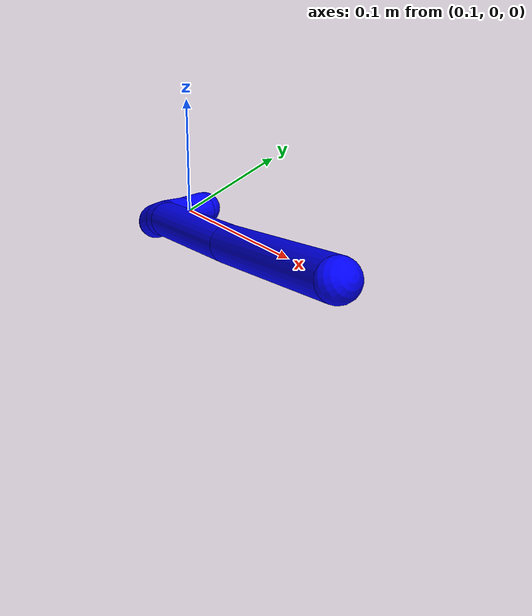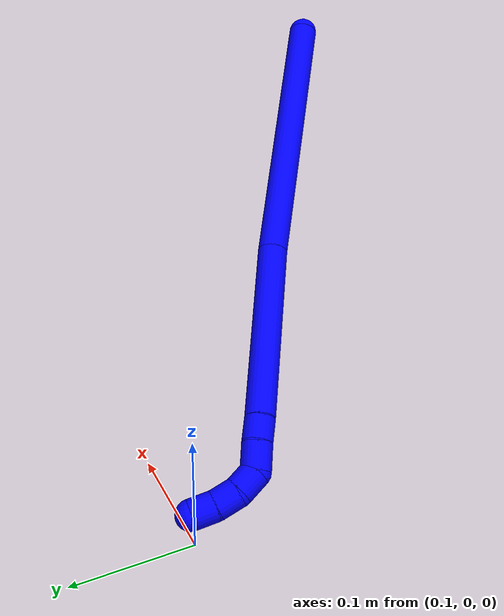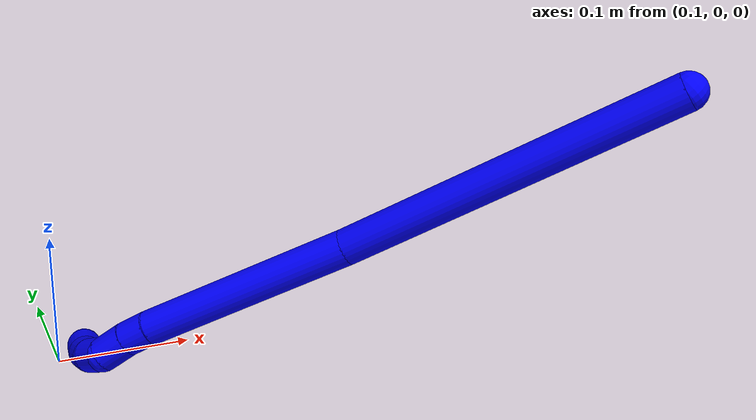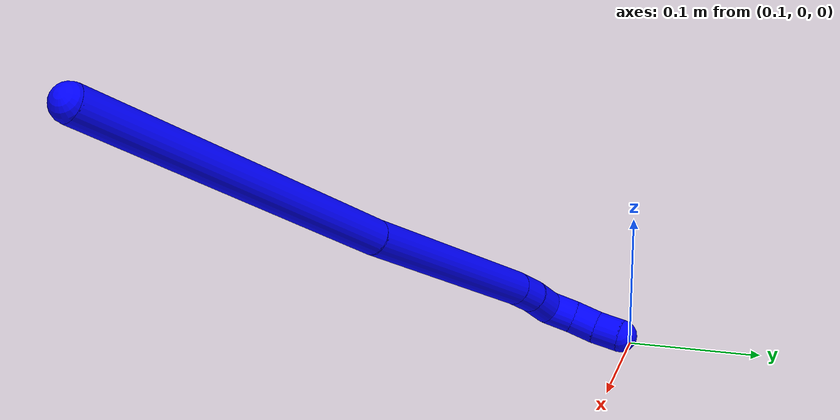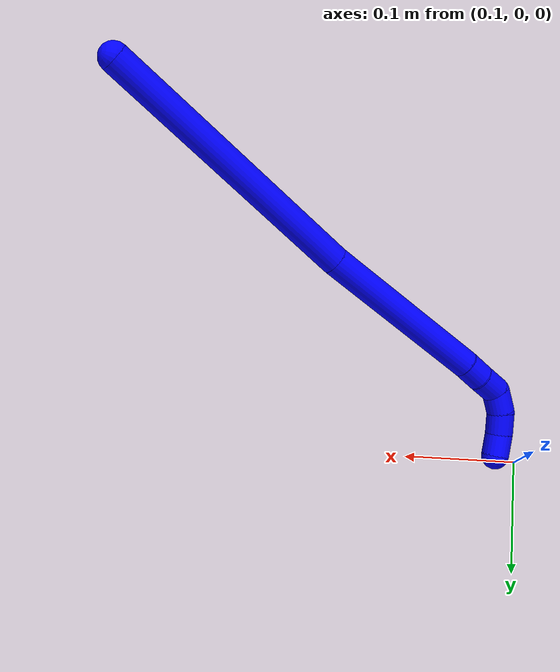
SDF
<sdf version="1.7">
 <world name="default">
  <plugin name="TubeGeneratorPlugin" filename="libtube_generator_plugin.so"/>
  <model name="photoneo_s_sensor">
   <static>1</static>
   <pose>0 0 2 1.57079 1.57079 3.14159</pose>
   <link name="link">
    <inertial><mass>0.1</mass></inertial>
    <sensor name="sensor" type="depth">
     <update_rate>30</update_rate>
     <camera>
      <horizontal_fov>1.22</horizontal_fov>
      <image><width>1920</width><height>1200</height><format>B8G8R8</format></image>
      <clip><near>0.1</near><far>4</far></clip>
      <depth_camera><output>points</output></depth_camera>
     </camera>
     <plugin name="camera_plugin" filename="libgazebo_ros_depth_camera.so">
      <baseline>0.2</baseline>
      <alwaysOn>1</alwaysOn>
      <updateRate>0.0</updateRate>
      <cameraName>camera_ir</cameraName>
      <imageTopicName>/camera/color/image_raw</imageTopicName>
      <cameraInfoTopicName>/camera/color/camera_info</cameraInfoTopicName>
      <depthImageTopicName>/camera/depth/image_raw</depthImageTopicName>
      <depthImageCameraInfoTopicName>/camera/depth/camera_info</depthImageCameraInfoTopicName>
      <pointCloudTopicName>/camera/depth/points</pointCloudTopicName>
      <frameName>fr_optical</frameName>
      <pointCloudCutoff>0.1</pointCloudCutoff>
      <pointCloudCutoffMax>2.0</pointCloudCutoffMax>
      <distortionK1>0</distortionK1>
      <distortionK2>0</distortionK2>
      <distortionK3>0</distortionK3>
      <distortionT1>0</distortionT1>
      <distortionT2>0</distortionT2>
      <CxPrime>0</CxPrime>
      <Cx>0</Cx>
      <Cy>0</Cy>
      <focalLength>0</focalLength>
      <hackBaseline>0</hackBaseline>
     </plugin>
    </sensor>
   </link>
  </model>
  <gravity>0 0 -9.8</gravity>
  <magnetic_field>6e-06 2.3e-05 -4.2e-05</magnetic_field>
  <atmosphere type="adiabatic"/>
  <physics name="default_physics" default="0" type="ode">
   <max_step_size>0.003</max_step_size>
   <real_time_factor>1</real_time_factor>
   <real_time_update_rate>1000</real_time_update_rate>
   <max_contacts>10000</max_contacts>
   <ode>
    <solver>
     <type>quick</type>
     <iters>100</iters>
     <sor>1.3</sor>
     <use_dynamic_moi_rescaling>0</use_dynamic_moi_rescaling>
    </solver>
    <constraints>
     <contact_max_correcting_vel>0</contact_max_correcting_vel>
     <contact_surface_layer>0.001</contact_surface_layer>
     <cfm>0</cfm>
     <erp>0.2</erp>
    </constraints>
   </ode>
  </physics>
  <scene><ambient>0.4 0.4 0.4 1</ambient><background>0.7 0.7 0.7 1</background><shadows>0</shadows></scene>
  <audio><device>default</device></audio>
  <spherical_coordinates>
   <surface_model>EARTH_WGS84</surface_model>
   <latitude_deg>0</latitude_deg>
   <longitude_deg>0</longitude_deg>
   <elevation>0</elevation>
   <heading_deg>0</heading_deg>
  </spherical_coordinates>
  <model name="bin">
   <static>1</static>
   <link name="bottom">
    <collision name="collision-bottom">
     <pose>0 0 -0.01 0 -0 0</pose>
     <geometry><box><size>0.8 0.6 0.02</size></box></geometry>
     <surface>
      <friction><ode><mu>100</mu><mu2>100</mu2></ode></friction>
      <contact><collide_bitmask>65535</collide_bitmask></contact>
     </surface>
    </collision>
   </link>
   <link name="west_wall">
    <collision name="collision-west_wall">
     <pose>-0.41 0 0.1 0 -0 0</pose>
     <geometry><box><size>0.02 0.6 0.2</size></box></geometry>
     <surface>
      <friction><ode><mu>100</mu><mu2>100</mu2></ode></friction>
      <contact><collide_bitmask>65535</collide_bitmask></contact>
     </surface>
    </collision>
   </link>
   <link name="east_wall">
    <collision name="collision-east_wall">
     <pose>0.41 0 0.1 0 -0 0</pose>
     <geometry><box><size>0.02 0.6 0.2</size></box></geometry>
     <surface>
      <friction><ode><mu>100</mu><mu2>100</mu2></ode></friction>
      <contact><collide_bitmask>65535</collide_bitmask></contact>
     </surface>
    </collision>
   </link>
   <link name="south_wall">
    <collision name="collision-south_wall">
     <pose>0 -0.31 0.1 0 -0 0</pose>
     <geometry><box><size>0.8 0.02 0.2</size></box></geometry>
     <surface>
      <friction><ode><mu>100</mu><mu2>100</mu2></ode></friction>
      <contact><collide_bitmask>65535</collide_bitmask></contact>
     </surface>
    </collision>
   </link>
   <link name="north_wall">
    <collision name="collision-north_wall">
     <pose>0 0.31 0.1 0 -0 0</pose>
     <geometry><box><size>0.8 0.02 0.2</size></box></geometry>
     <surface>
      <friction><ode><mu>100</mu><mu2>100</mu2></ode></friction>
      <contact><collide_bitmask>65535</collide_bitmask></contact>
     </surface>
    </collision>
   </link>
  </model>
  <model name="1">
   <static>0</static>
   <link name="1">
    <collision name="collision-cylinder-e_1_1_4">
     <pose>0.045434 0.028968 0.107548 -0.263109 0.387309 -0.051887</pose>
     <geometry><cylinder><radius>0.0125</radius><length>0.240582</length></cylinder></geometry>
     <surface>
      <friction><ode><mu>1.16</mu><mu2>1.16</mu2><slip1>0</slip1><slip2>0</slip2></ode></friction>
      <contact><ode><kp>1e+06</kp><kd>1</kd><max_vel>0</max_vel><min_depth>0.001</min_depth></ode></contact>
     </surface>
    </collision>
    <visual name="visual-cylinder-e_1_1_4">
     <pose>0.045434 0.028968 0.107548 -0.263109 0.387309 -0.051887</pose>
     <geometry><cylinder><radius>0.0125</radius><length>0.240582</length></cylinder></geometry>
     <material><ambient>0 0 1 1</ambient></material>
    </visual>
    <collision name="collision-cylinder-e_2_4_5">
     <pose>0.121443 0.070729 0.285256 -0.18035 0.405022 -0.037127</pose>
     <geometry><cylinder><radius>0.0125</radius><length>0.155191</length></cylinder></geometry>
     <surface>
      <friction><ode><mu>1.16</mu><mu2>1.16</mu2><slip1>0</slip1><slip2>0</slip2></ode></friction>
      <contact><ode><kp>1e+06</kp><kd>1</kd><max_vel>0</max_vel><min_depth>0.001</min_depth></ode></contact>
     </surface>
    </collision>
    <visual name="visual-cylinder-e_2_4_5">
     <pose>0.121443 0.070729 0.285256 -0.18035 0.405022 -0.037127</pose>
     <geometry><cylinder><radius>0.0125</radius><length>0.155191</length></cylinder></geometry>
     <material><ambient>0 0 1 1</ambient></material>
    </visual>
    <collision name="collision-cylinder-e_3_5_6">
     <pose>0.155587 0.085895 0.364477 -0.256168 0.364 -0.047395</pose>
     <geometry><cylinder><radius>0.0125</radius><length>0.020044</length></cylinder></geometry>
     <surface>
      <friction><ode><mu>1.16</mu><mu2>1.16</mu2><slip1>0</slip1><slip2>0</slip2></ode></friction>
      <contact><ode><kp>1e+06</kp><kd>1</kd><max_vel>0</max_vel><min_depth>0.001</min_depth></ode></contact>
     </surface>
    </collision>
    <visual name="visual-cylinder-e_3_5_6">
     <pose>0.155587 0.085895 0.364477 -0.256168 0.364 -0.047395</pose>
     <geometry><cylinder><radius>0.0125</radius><length>0.020044</length></cylinder></geometry>
     <material><ambient>0 0 1 1</ambient></material>
    </visual>
    <collision name="collision-cylinder-e_4_6_7">
     <pose>0.162004 0.091198 0.384462 -0.262056 0.246737 -0.032679</pose>
     <geometry><cylinder><radius>0.0125</radius><length>0.02333</length></cylinder></geometry>
     <surface>
      <friction><ode><mu>1.16</mu><mu2>1.16</mu2><slip1>0</slip1><slip2>0</slip2></ode></friction>
      <contact><ode><kp>1e+06</kp><kd>1</kd><max_vel>0</max_vel><min_depth>0.001</min_depth></ode></contact>
     </surface>
    </collision>
    <visual name="visual-cylinder-e_4_6_7">
     <pose>0.162004 0.091198 0.384462 -0.262056 0.246737 -0.032679</pose>
     <geometry><cylinder><radius>0.0125</radius><length>0.02333</length></cylinder></geometry>
     <material><ambient>0 0 1 1</ambient></material>
    </visual>
    <collision name="collision-cylinder-e_5_7_8">
     <pose>0.170727 0.100746 0.400692 -0.895166 0.605766 -0.297825</pose>
     <geometry><cylinder><radius>0.0125</radius><length>0.020632</length></cylinder></geometry>
     <surface>
      <friction><ode><mu>1.16</mu><mu2>1.16</mu2><slip1>0</slip1><slip2>0</slip2></ode></friction>
      <contact><ode><kp>1e+06</kp><kd>1</kd><max_vel>0</max_vel><min_depth>0.001</min_depth></ode></contact>
     </surface>
    </collision>
    <visual name="visual-cylinder-e_5_7_8">
     <pose>0.170727 0.100746 0.400692 -0.895166 0.605766 -0.297825</pose>
     <geometry><cylinder><radius>0.0125</radius><length>0.020632</length></cylinder></geometry>
     <material><ambient>0 0 1 1</ambient></material>
    </visual>
    <collision name="collision-cylinder-e_6_8_9">
     <pose>0.181943 0.115477 0.408492 -1.27228 0.561763 -0.419881</pose>
     <geometry><cylinder><radius>0.0125</radius><length>0.02006</length></cylinder></geometry>
     <surface>
      <friction><ode><mu>1.16</mu><mu2>1.16</mu2><slip1>0</slip1><slip2>0</slip2></ode></friction>
      <contact><ode><kp>1e+06</kp><kd>1</kd><max_vel>0</max_vel><min_depth>0.001</min_depth></ode></contact>
     </surface>
    </collision>
    <visual name="visual-cylinder-e_6_8_9">
     <pose>0.181943 0.115477 0.408492 -1.27228 0.561763 -0.419881</pose>
     <geometry><cylinder><radius>0.0125</radius><length>0.02006</length></cylinder></geometry>
     <material><ambient>0 0 1 1</ambient></material>
    </visual>
    <collision name="collision-cylinder-e_7_9_2">
     <pose>0.193263 0.131681 0.411642 -1.49024 0.634672 -0.588391</pose>
     <geometry><cylinder><radius>0.0125</radius><length>0.020161</length></cylinder></geometry>
     <surface>
      <friction><ode><mu>1.16</mu><mu2>1.16</mu2><slip1>0</slip1><slip2>0</slip2></ode></friction>
      <contact><ode><kp>1e+06</kp><kd>1</kd><max_vel>0</max_vel><min_depth>0.001</min_depth></ode></contact>
     </surface>
    </collision>
    <visual name="visual-cylinder-e_7_9_2">
     <pose>0.193263 0.131681 0.411642 -1.49024 0.634672 -0.588391</pose>
     <geometry><cylinder><radius>0.0125</radius><length>0.020161</length></cylinder></geometry>
     <material><ambient>0 0 1 1</ambient></material>
    </visual>
    <collision name="collision-sphere-2">
     <pose>0.19924 0.139772 0.412295 0 -0 0</pose>
     <geometry><sphere><radius>0.0125</radius></sphere></geometry>
     <surface>
      <friction><ode><mu>1.16</mu><mu2>1.16</mu2><slip1>0</slip1><slip2>0</slip2></ode></friction>
      <contact><ode><kp>1e+06</kp><kd>1</kd><max_vel>0</max_vel><min_depth>0.001</min_depth></ode></contact>
     </surface>
    </collision>
    <visual name="visual-sphere-2">
     <pose>0.19924 0.139772 0.412295 0 -0 0</pose>
     <geometry><sphere><radius>0.0125</radius></sphere></geometry>
     <material><ambient>0 0 1 1</ambient></material>
    </visual>
    <collision name="collision-sphere-9">
     <pose>0.187286 0.12359 0.410988 0 -0 0</pose>
     <geometry><sphere><radius>0.0125</radius></sphere></geometry>
     <surface>
      <friction><ode><mu>1.16</mu><mu2>1.16</mu2><slip1>0</slip1><slip2>0</slip2></ode></friction>
      <contact><ode><kp>1e+06</kp><kd>1</kd><max_vel>0</max_vel><min_depth>0.001</min_depth></ode></contact>
     </surface>
    </collision>
    <visual name="visual-sphere-9">
     <pose>0.187286 0.12359 0.410988 0 -0 0</pose>
     <geometry><sphere><radius>0.0125</radius></sphere></geometry>
     <material><ambient>0 0 1 1</ambient></material>
    </visual>
    <collision name="collision-sphere-4">
     <pose>0.090867 0.057937 0.215096 0 -0 0</pose>
     <geometry><sphere><radius>0.0125</radius></sphere></geometry>
     <surface>
      <friction><ode><mu>1.16</mu><mu2>1.16</mu2><slip1>0</slip1><slip2>0</slip2></ode></friction>
      <contact><ode><kp>1e+06</kp><kd>1</kd><max_vel>0</max_vel><min_depth>0.001</min_depth></ode></contact>
     </surface>
    </collision>
    <visual name="visual-sphere-4">
     <pose>0.090867 0.057937 0.215096 0 -0 0</pose>
     <geometry><sphere><radius>0.0125</radius></sphere></geometry>
     <material><ambient>0 0 1 1</ambient></material>
    </visual>
    <collision name="collision-sphere-1">
     <geometry><sphere><radius>0.0125</radius></sphere></geometry>
     <surface>
      <friction><ode><mu>1.16</mu><mu2>1.16</mu2><slip1>0</slip1><slip2>0</slip2></ode></friction>
      <contact><ode><kp>1e+06</kp><kd>1</kd><max_vel>0</max_vel><min_depth>0.001</min_depth></ode></contact>
     </surface>
    </collision>
    <visual name="visual-sphere-1">
     <geometry><sphere><radius>0.0125</radius></sphere></geometry>
     <material><ambient>0 0 1 1</ambient></material>
    </visual>
    <collision name="collision-sphere-8">
     <pose>0.176601 0.107364 0.405995 0 -0 0</pose>
     <geometry><sphere><radius>0.0125</radius></sphere></geometry>
     <surface>
      <friction><ode><mu>1.16</mu><mu2>1.16</mu2><slip1>0</slip1><slip2>0</slip2></ode></friction>
      <contact><ode><kp>1e+06</kp><kd>1</kd><max_vel>0</max_vel><min_depth>0.001</min_depth></ode></contact>
     </surface>
    </collision>
    <visual name="visual-sphere-8">
     <pose>0.176601 0.107364 0.405995 0 -0 0</pose>
     <geometry><sphere><radius>0.0125</radius></sphere></geometry>
     <material><ambient>0 0 1 1</ambient></material>
    </visual>
    <collision name="collision-sphere-5">
     <pose>0.152019 0.083522 0.355417 0 -0 0</pose>
     <geometry><sphere><radius>0.0125</radius></sphere></geometry>
     <surface>
      <friction><ode><mu>1.16</mu><mu2>1.16</mu2><slip1>0</slip1><slip2>0</slip2></ode></friction>
      <contact><ode><kp>1e+06</kp><kd>1</kd><max_vel>0</max_vel><min_depth>0.001</min_depth></ode></contact>
     </surface>
    </collision>
    <visual name="visual-sphere-5">
     <pose>0.152019 0.083522 0.355417 0 -0 0</pose>
     <geometry><sphere><radius>0.0125</radius></sphere></geometry>
     <material><ambient>0 0 1 1</ambient></material>
    </visual>
    <collision name="collision-sphere-6">
     <pose>0.159154 0.088267 0.373537 0 -0 0</pose>
     <geometry><sphere><radius>0.0125</radius></sphere></geometry>
     <surface>
      <friction><ode><mu>1.16</mu><mu2>1.16</mu2><slip1>0</slip1><slip2>0</slip2></ode></friction>
      <contact><ode><kp>1e+06</kp><kd>1</kd><max_vel>0</max_vel><min_depth>0.001</min_depth></ode></contact>
     </surface>
    </collision>
    <visual name="visual-sphere-6">
     <pose>0.159154 0.088267 0.373537 0 -0 0</pose>
     <geometry><sphere><radius>0.0125</radius></sphere></geometry>
     <material><ambient>0 0 1 1</ambient></material>
    </visual>
    <collision name="collision-sphere-7">
     <pose>0.164853 0.094129 0.395388 0 -0 0</pose>
     <geometry><sphere><radius>0.0125</radius></sphere></geometry>
     <surface>
      <friction><ode><mu>1.16</mu><mu2>1.16</mu2><slip1>0</slip1><slip2>0</slip2></ode></friction>
      <contact><ode><kp>1e+06</kp><kd>1</kd><max_vel>0</max_vel><min_depth>0.001</min_depth></ode></contact>
     </surface>
    </collision>
    <visual name="visual-sphere-7">
     <pose>0.164853 0.094129 0.395388 0 -0 0</pose>
     <geometry><sphere><radius>0.0125</radius></sphere></geometry>
     <material><ambient>0 0 1 1</ambient></material>
    </visual>
    <inertial>
     <pose>0.095488 0.05769 0.222358 0 -0 0</pose>
     <mass>0.5</mass>
     <inertia>
      <ixx>0.001327</ixx>
      <ixy>0</ixy>
      <ixz>0</ixz>
      <iyy>0.001395</iyy>
      <iyz>0</iyz>
      <izz>-0.000877</izz>
     </inertia>
    </inertial>
   </link>
   <pose>0.446522 -0.262434 0.247495 -2.39667 -0.549897 2.03666</pose>
  </model>
 </world>
</sdf>
